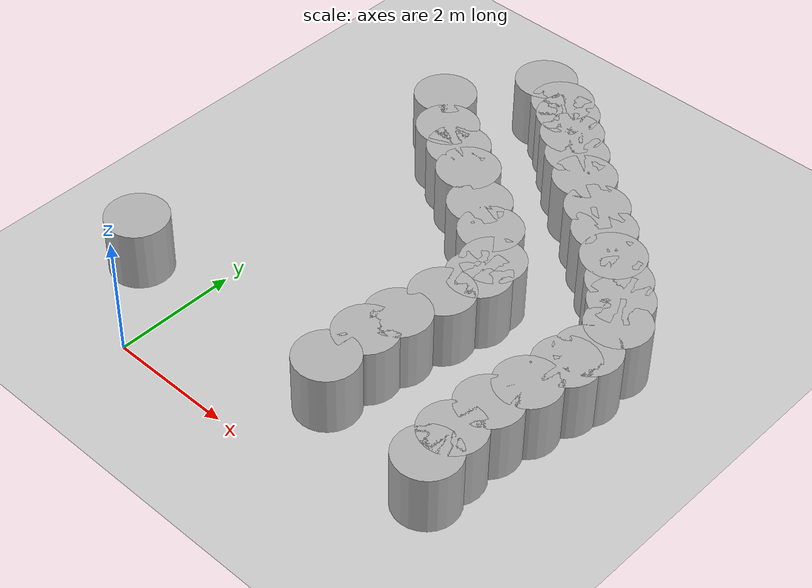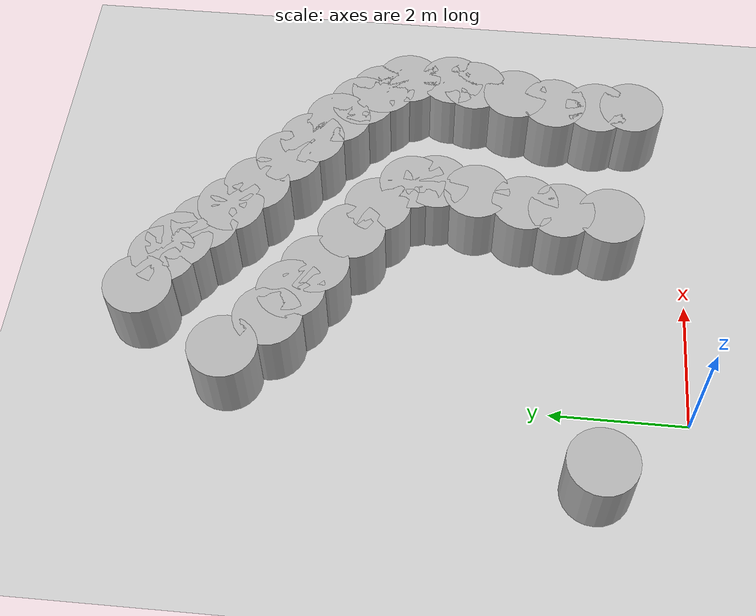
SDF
<sdf version="1.9">
 <world name="maze">
  <model name="ground_plane">
   <static>true</static>
   <link name="link">
    <collision name="collision">
     <geometry><plane><normal>0 0 1</normal><size>100 100</size></plane></geometry>
    </collision>
    <visual name="visual">
     <geometry><plane><normal>0 0 1</normal><size>100 100</size></plane></geometry>
     <material>
      <ambient>0.8 0.8 0.8 1</ambient>
      <diffuse>0.8 0.8 0.8 1</diffuse>
      <specular>0.8 0.8 0.8 1</specular>
     </material>
     <plugin name="__default__" filename="__default__"/>
    </visual>
    <inertial>
     <mass>1</mass>
     <inertia><ixx>1</ixx><ixy>0</ixy><ixz>0</ixz><iyy>1</iyy><iyz>0</iyz><izz>1</izz></inertia>
    </inertial>
   </link>
   <plugin name="__default__" filename="__default__"/>
  </model>
  <model name="cylinder_6">
   <pose>5.05596 0.90192 0.5 0 -0 0</pose>
   <link name="cylinder_link">
    <inertial>
     <inertia>
      <ixx>0.14580000000000001</ixx>
      <ixy>0</ixy>
      <ixz>0</ixz>
      <iyy>0.14580000000000001</iyy>
      <iyz>0</iyz>
      <izz>0.125</izz>
     </inertia>
     <mass>1</mass>
    </inertial>
    <collision name="cylinder_collision">
     <geometry><cylinder><radius>0.5</radius><length>1</length></cylinder></geometry>
    </collision>
    <visual name="cylinder_visual">
     <geometry><cylinder><radius>0.5</radius><length>1</length></cylinder></geometry>
     <material>
      <ambient>0.3 0.3 0.3 1</ambient>
      <diffuse>0.7 0.7 0.7 1</diffuse>
      <specular>1 1 1 1</specular>
     </material>
    </visual>
   </link>
   <static>false</static>
  </model>
  <model name="cylinder_7">
   <pose>5.00665 1.43891 0.5 0 -0 0</pose>
   <link name="cylinder_link">
    <inertial>
     <inertia>
      <ixx>0.14580000000000001</ixx>
      <ixy>0</ixy>
      <ixz>0</ixz>
      <iyy>0.14580000000000001</iyy>
      <iyz>0</iyz>
      <izz>0.125</izz>
     </inertia>
     <mass>1</mass>
    </inertial>
    <collision name="cylinder_collision">
     <geometry><cylinder><radius>0.5</radius><length>1</length></cylinder></geometry>
    </collision>
    <visual name="cylinder_visual">
     <geometry><cylinder><radius>0.5</radius><length>1</length></cylinder></geometry>
     <material>
      <ambient>0.3 0.3 0.3 1</ambient>
      <diffuse>0.7 0.7 0.7 1</diffuse>
      <specular>1 1 1 1</specular>
     </material>
    </visual>
   </link>
   <static>false</static>
  </model>
  <model name="cylinder_13">
   <pose>2.89583 1.22956 0.5 0 -0 0</pose>
   <link name="cylinder_link">
    <inertial>
     <inertia>
      <ixx>0.14580000000000001</ixx>
      <ixy>0</ixy>
      <ixz>0</ixz>
      <iyy>0.14580000000000001</iyy>
      <iyz>0</iyz>
      <izz>0.125</izz>
     </inertia>
     <mass>1</mass>
    </inertial>
    <collision name="cylinder_collision">
     <geometry><cylinder><radius>0.5</radius><length>1</length></cylinder></geometry>
    </collision>
    <visual name="cylinder_visual">
     <geometry><cylinder><radius>0.5</radius><length>1</length></cylinder></geometry>
     <material>
      <ambient>0.3 0.3 0.3 1</ambient>
      <diffuse>0.7 0.7 0.7 1</diffuse>
      <specular>1 1 1 1</specular>
     </material>
    </visual>
   </link>
   <static>false</static>
  </model>
  <model name="cylinder_14">
   <pose>2.93199 1.96354 0.5 0 -0 0</pose>
   <link name="cylinder_link">
    <inertial>
     <inertia>
      <ixx>0.14580000000000001</ixx>
      <ixy>0</ixy>
      <ixz>0</ixz>
      <iyy>0.14580000000000001</iyy>
      <iyz>0</iyz>
      <izz>0.125</izz>
     </inertia>
     <mass>1</mass>
    </inertial>
    <collision name="cylinder_collision">
     <geometry><cylinder><radius>0.5</radius><length>1</length></cylinder></geometry>
    </collision>
    <visual name="cylinder_visual">
     <geometry><cylinder><radius>0.5</radius><length>1</length></cylinder></geometry>
     <material>
      <ambient>0.3 0.3 0.3 1</ambient>
      <diffuse>0.7 0.7 0.7 1</diffuse>
      <specular>1 1 1 1</specular>
     </material>
    </visual>
   </link>
   <static>false</static>
  </model>
  <model name="cylinder_15">
   <pose>3.02494 2.50982 0.5 0 -0 0</pose>
   <link name="cylinder_link">
    <inertial>
     <inertia>
      <ixx>0.14580000000000001</ixx>
      <ixy>0</ixy>
      <ixz>0</ixz>
      <iyy>0.14580000000000001</iyy>
      <iyz>0</iyz>
      <izz>0.125</izz>
     </inertia>
     <mass>1</mass>
    </inertial>
    <collision name="cylinder_collision">
     <geometry><cylinder><radius>0.5</radius><length>1</length></cylinder></geometry>
    </collision>
    <visual name="cylinder_visual">
     <geometry><cylinder><radius>0.5</radius><length>1</length></cylinder></geometry>
     <material>
      <ambient>0.3 0.3 0.3 1</ambient>
      <diffuse>0.7 0.7 0.7 1</diffuse>
      <specular>1 1 1 1</specular>
     </material>
    </visual>
   </link>
   <static>false</static>
  </model>
  <model name="cylinder_16">
   <pose>5.04031 2.12177 0.5 0 -0 0</pose>
   <link name="cylinder_link">
    <inertial>
     <inertia>
      <ixx>0.14580000000000001</ixx>
      <ixy>0</ixy>
      <ixz>0</ixz>
      <iyy>0.14580000000000001</iyy>
      <iyz>0</iyz>
      <izz>0.125</izz>
     </inertia>
     <mass>1</mass>
    </inertial>
    <collision name="cylinder_collision">
     <geometry><cylinder><radius>0.5</radius><length>1</length></cylinder></geometry>
    </collision>
    <visual name="cylinder_visual">
     <geometry><cylinder><radius>0.5</radius><length>1</length></cylinder></geometry>
     <material>
      <ambient>0.3 0.3 0.3 1</ambient>
      <diffuse>0.7 0.7 0.7 1</diffuse>
      <specular>1 1 1 1</specular>
     </material>
    </visual>
   </link>
   <static>false</static>
  </model>
  <model name="cylinder_17">
   <pose>3.17881 3.24577 0.5 0 -0 0</pose>
   <link name="cylinder_link">
    <inertial>
     <inertia>
      <ixx>0.14580000000000001</ixx>
      <ixy>0</ixy>
      <ixz>0</ixz>
      <iyy>0.14580000000000001</iyy>
      <iyz>0</iyz>
      <izz>0.125</izz>
     </inertia>
     <mass>1</mass>
    </inertial>
    <collision name="cylinder_collision">
     <geometry><cylinder><radius>0.5</radius><length>1</length></cylinder></geometry>
    </collision>
    <visual name="cylinder_visual">
     <geometry><cylinder><radius>0.5</radius><length>1</length></cylinder></geometry>
     <material>
      <ambient>0.3 0.3 0.3 1</ambient>
      <diffuse>0.7 0.7 0.7 1</diffuse>
      <specular>1 1 1 1</specular>
     </material>
    </visual>
   </link>
   <static>false</static>
  </model>
  <model name="cylinder_18">
   <pose>3.30953 3.86336 0.5 0 -0 0</pose>
   <link name="cylinder_link">
    <inertial>
     <inertia>
      <ixx>0.14580000000000001</ixx>
      <ixy>0</ixy>
      <ixz>0</ixz>
      <iyy>0.14580000000000001</iyy>
      <iyz>0</iyz>
      <izz>0.125</izz>
     </inertia>
     <mass>1</mass>
    </inertial>
    <collision name="cylinder_collision">
     <geometry><cylinder><radius>0.5</radius><length>1</length></cylinder></geometry>
    </collision>
    <visual name="cylinder_visual">
     <geometry><cylinder><radius>0.5</radius><length>1</length></cylinder></geometry>
     <material>
      <ambient>0.3 0.3 0.3 1</ambient>
      <diffuse>0.7 0.7 0.7 1</diffuse>
      <specular>1 1 1 1</specular>
     </material>
    </visual>
   </link>
   <static>false</static>
  </model>
  <model name="cylinder_19">
   <pose>3.26516 4.22192 0.5 0 -0 0</pose>
   <link name="cylinder_link">
    <inertial>
     <inertia>
      <ixx>0.14580000000000001</ixx>
      <ixy>0</ixy>
      <ixz>0</ixz>
      <iyy>0.14580000000000001</iyy>
      <iyz>0</iyz>
      <izz>0.125</izz>
     </inertia>
     <mass>1</mass>
    </inertial>
    <collision name="cylinder_collision">
     <geometry><cylinder><radius>0.5</radius><length>1</length></cylinder></geometry>
    </collision>
    <visual name="cylinder_visual">
     <geometry><cylinder><radius>0.5</radius><length>1</length></cylinder></geometry>
     <material>
      <ambient>0.3 0.3 0.3 1</ambient>
      <diffuse>0.7 0.7 0.7 1</diffuse>
      <specular>1 1 1 1</specular>
     </material>
    </visual>
   </link>
   <static>false</static>
  </model>
  <model name="cylinder_20">
   <pose>2.79599 4.70402 0.5 0 -0 0</pose>
   <link name="cylinder_link">
    <inertial>
     <inertia>
      <ixx>0.14580000000000001</ixx>
      <ixy>0</ixy>
      <ixz>0</ixz>
      <iyy>0.14580000000000001</iyy>
      <iyz>0</iyz>
      <izz>0.125</izz>
     </inertia>
     <mass>1</mass>
    </inertial>
    <collision name="cylinder_collision">
     <geometry><cylinder><radius>0.5</radius><length>1</length></cylinder></geometry>
    </collision>
    <visual name="cylinder_visual">
     <geometry><cylinder><radius>0.5</radius><length>1</length></cylinder></geometry>
     <material>
      <ambient>0.3 0.3 0.3 1</ambient>
      <diffuse>0.7 0.7 0.7 1</diffuse>
      <specular>1 1 1 1</specular>
     </material>
    </visual>
   </link>
   <static>false</static>
  </model>
  <model name="cylinder_21">
   <pose>2.27964 5.04206 0.5 0 -0 0</pose>
   <link name="cylinder_link">
    <inertial>
     <inertia>
      <ixx>0.14580000000000001</ixx>
      <ixy>0</ixy>
      <ixz>0</ixz>
      <iyy>0.14580000000000001</iyy>
      <iyz>0</iyz>
      <izz>0.125</izz>
     </inertia>
     <mass>1</mass>
    </inertial>
    <collision name="cylinder_collision">
     <geometry><cylinder><radius>0.5</radius><length>1</length></cylinder></geometry>
    </collision>
    <visual name="cylinder_visual">
     <geometry><cylinder><radius>0.5</radius><length>1</length></cylinder></geometry>
     <material>
      <ambient>0.3 0.3 0.3 1</ambient>
      <diffuse>0.7 0.7 0.7 1</diffuse>
      <specular>1 1 1 1</specular>
     </material>
    </visual>
   </link>
   <static>false</static>
  </model>
  <model name="cylinder_22">
   <pose>1.64436 5.50225 0.5 0 -0 0</pose>
   <link name="cylinder_link">
    <inertial>
     <inertia>
      <ixx>0.14580000000000001</ixx>
      <ixy>0</ixy>
      <ixz>0</ixz>
      <iyy>0.14580000000000001</iyy>
      <iyz>0</iyz>
      <izz>0.125</izz>
     </inertia>
     <mass>1</mass>
    </inertial>
    <collision name="cylinder_collision">
     <geometry><cylinder><radius>0.5</radius><length>1</length></cylinder></geometry>
    </collision>
    <visual name="cylinder_visual">
     <geometry><cylinder><radius>0.5</radius><length>1</length></cylinder></geometry>
     <material>
      <ambient>0.3 0.3 0.3 1</ambient>
      <diffuse>0.7 0.7 0.7 1</diffuse>
      <specular>1 1 1 1</specular>
     </material>
    </visual>
   </link>
   <static>false</static>
  </model>
  <model name="cylinder_23">
   <pose>0.716786 6.0641 0.5 0 -0 0</pose>
   <link name="cylinder_link">
    <inertial>
     <inertia>
      <ixx>0.14580000000000001</ixx>
      <ixy>0</ixy>
      <ixz>0</ixz>
      <iyy>0.14580000000000001</iyy>
      <iyz>0</iyz>
      <izz>0.125</izz>
     </inertia>
     <mass>1</mass>
    </inertial>
    <collision name="cylinder_collision">
     <geometry><cylinder><radius>0.5</radius><length>1</length></cylinder></geometry>
    </collision>
    <visual name="cylinder_visual">
     <geometry><cylinder><radius>0.5</radius><length>1</length></cylinder></geometry>
     <material>
      <ambient>0.3 0.3 0.3 1</ambient>
      <diffuse>0.7 0.7 0.7 1</diffuse>
      <specular>1 1 1 1</specular>
     </material>
    </visual>
   </link>
   <static>false</static>
  </model>
  <model name="cylinder_24">
   <pose>1.1856 5.79695 0.5 0 -0 0</pose>
   <link name="cylinder_link">
    <inertial>
     <inertia>
      <ixx>0.14580000000000001</ixx>
      <ixy>0</ixy>
      <ixz>0</ixz>
      <iyy>0.14580000000000001</iyy>
      <iyz>0</iyz>
      <izz>0.125</izz>
     </inertia>
     <mass>1</mass>
    </inertial>
    <collision name="cylinder_collision">
     <geometry><cylinder><radius>0.5</radius><length>1</length></cylinder></geometry>
    </collision>
    <visual name="cylinder_visual">
     <geometry><cylinder><radius>0.5</radius><length>1</length></cylinder></geometry>
     <material>
      <ambient>0.3 0.3 0.3 1</ambient>
      <diffuse>0.7 0.7 0.7 1</diffuse>
      <specular>1 1 1 1</specular>
     </material>
    </visual>
   </link>
   <static>false</static>
  </model>
  <model name="cylinder_25">
   <pose>0.160367 6.62092 0.5 0 -0 0</pose>
   <link name="cylinder_link">
    <inertial>
     <inertia>
      <ixx>0.14580000000000001</ixx>
      <ixy>0</ixy>
      <ixz>0</ixz>
      <iyy>0.14580000000000001</iyy>
      <iyz>0</iyz>
      <izz>0.125</izz>
     </inertia>
     <mass>1</mass>
    </inertial>
    <collision name="cylinder_collision">
     <geometry><cylinder><radius>0.5</radius><length>1</length></cylinder></geometry>
    </collision>
    <visual name="cylinder_visual">
     <geometry><cylinder><radius>0.5</radius><length>1</length></cylinder></geometry>
     <material>
      <ambient>0.3 0.3 0.3 1</ambient>
      <diffuse>0.7 0.7 0.7 1</diffuse>
      <specular>1 1 1 1</specular>
     </material>
    </visual>
   </link>
   <static>false</static>
  </model>
  <model name="cylinder_26">
   <pose>5.17862 2.742 0.5 0 -0 0</pose>
   <link name="cylinder_link">
    <inertial>
     <inertia>
      <ixx>0.14580000000000001</ixx>
      <ixy>0</ixy>
      <ixz>0</ixz>
      <iyy>0.14580000000000001</iyy>
      <iyz>0</iyz>
      <izz>0.125</izz>
     </inertia>
     <mass>1</mass>
    </inertial>
    <collision name="cylinder_collision">
     <geometry><cylinder><radius>0.5</radius><length>1</length></cylinder></geometry>
    </collision>
    <visual name="cylinder_visual">
     <geometry><cylinder><radius>0.5</radius><length>1</length></cylinder></geometry>
     <material>
      <ambient>0.3 0.3 0.3 1</ambient>
      <diffuse>0.7 0.7 0.7 1</diffuse>
      <specular>1 1 1 1</specular>
     </material>
    </visual>
   </link>
   <static>false</static>
  </model>
  <model name="cylinder_27">
   <pose>5.30273 3.39871 0.5 0 -0 0</pose>
   <link name="cylinder_link">
    <inertial>
     <inertia>
      <ixx>0.14580000000000001</ixx>
      <ixy>0</ixy>
      <ixz>0</ixz>
      <iyy>0.14580000000000001</iyy>
      <iyz>0</iyz>
      <izz>0.125</izz>
     </inertia>
     <mass>1</mass>
    </inertial>
    <collision name="cylinder_collision">
     <geometry><cylinder><radius>0.5</radius><length>1</length></cylinder></geometry>
    </collision>
    <visual name="cylinder_visual">
     <geometry><cylinder><radius>0.5</radius><length>1</length></cylinder></geometry>
     <material>
      <ambient>0.3 0.3 0.3 1</ambient>
      <diffuse>0.7 0.7 0.7 1</diffuse>
      <specular>1 1 1 1</specular>
     </material>
    </visual>
   </link>
   <static>false</static>
  </model>
  <model name="cylinder_28">
   <pose>5.38687 3.75792 0.5 0 -0 0</pose>
   <link name="cylinder_link">
    <inertial>
     <inertia>
      <ixx>0.14580000000000001</ixx>
      <ixy>0</ixy>
      <ixz>0</ixz>
      <iyy>0.14580000000000001</iyy>
      <iyz>0</iyz>
      <izz>0.125</izz>
     </inertia>
     <mass>1</mass>
    </inertial>
    <collision name="cylinder_collision">
     <geometry><cylinder><radius>0.5</radius><length>1</length></cylinder></geometry>
    </collision>
    <visual name="cylinder_visual">
     <geometry><cylinder><radius>0.5</radius><length>1</length></cylinder></geometry>
     <material>
      <ambient>0.3 0.3 0.3 1</ambient>
      <diffuse>0.7 0.7 0.7 1</diffuse>
      <specular>1 1 1 1</specular>
     </material>
    </visual>
   </link>
   <static>false</static>
  </model>
  <model name="cylinder_29">
   <pose>5.35531 4.44847 0.5 0 -0 0</pose>
   <link name="cylinder_link">
    <inertial>
     <inertia>
      <ixx>0.14580000000000001</ixx>
      <ixy>0</ixy>
      <ixz>0</ixz>
      <iyy>0.14580000000000001</iyy>
      <iyz>0</iyz>
      <izz>0.125</izz>
     </inertia>
     <mass>1</mass>
    </inertial>
    <collision name="cylinder_collision">
     <geometry><cylinder><radius>0.5</radius><length>1</length></cylinder></geometry>
    </collision>
    <visual name="cylinder_visual">
     <geometry><cylinder><radius>0.5</radius><length>1</length></cylinder></geometry>
     <material>
      <ambient>0.3 0.3 0.3 1</ambient>
      <diffuse>0.7 0.7 0.7 1</diffuse>
      <specular>1 1 1 1</specular>
     </material>
    </visual>
   </link>
   <static>false</static>
  </model>
  <model name="cylinder_30">
   <pose>5.09301 4.84558 0.5 0 -0 0</pose>
   <link name="cylinder_link">
    <inertial>
     <inertia>
      <ixx>0.14580000000000001</ixx>
      <ixy>0</ixy>
      <ixz>0</ixz>
      <iyy>0.14580000000000001</iyy>
      <iyz>0</iyz>
      <izz>0.125</izz>
     </inertia>
     <mass>1</mass>
    </inertial>
    <collision name="cylinder_collision">
     <geometry><cylinder><radius>0.5</radius><length>1</length></cylinder></geometry>
    </collision>
    <visual name="cylinder_visual">
     <geometry><cylinder><radius>0.5</radius><length>1</length></cylinder></geometry>
     <material>
      <ambient>0.3 0.3 0.3 1</ambient>
      <diffuse>0.7 0.7 0.7 1</diffuse>
      <specular>1 1 1 1</specular>
     </material>
    </visual>
   </link>
   <static>false</static>
  </model>
  <model name="cylinder_31">
   <pose>4.81726 5.14263 0.5 0 -0 0</pose>
   <link name="cylinder_link">
    <inertial>
     <inertia>
      <ixx>0.14580000000000001</ixx>
      <ixy>0</ixy>
      <ixz>0</ixz>
      <iyy>0.14580000000000001</iyy>
      <iyz>0</iyz>
      <izz>0.125</izz>
     </inertia>
     <mass>1</mass>
    </inertial>
    <collision name="cylinder_collision">
     <geometry><cylinder><radius>0.5</radius><length>1</length></cylinder></geometry>
    </collision>
    <visual name="cylinder_visual">
     <geometry><cylinder><radius>0.5</radius><length>1</length></cylinder></geometry>
     <material>
      <ambient>0.3 0.3 0.3 1</ambient>
      <diffuse>0.7 0.7 0.7 1</diffuse>
      <specular>1 1 1 1</specular>
     </material>
    </visual>
   </link>
   <static>false</static>
  </model>
  <model name="cylinder_32">
   <pose>4.44048 5.48779 0.5 0 -0 0</pose>
   <link name="cylinder_link">
    <inertial>
     <inertia>
      <ixx>0.14580000000000001</ixx>
      <ixy>0</ixy>
      <ixz>0</ixz>
      <iyy>0.14580000000000001</iyy>
      <iyz>0</iyz>
      <izz>0.125</izz>
     </inertia>
     <mass>1</mass>
    </inertial>
    <collision name="cylinder_collision">
     <geometry><cylinder><radius>0.5</radius><length>1</length></cylinder></geometry>
    </collision>
    <visual name="cylinder_visual">
     <geometry><cylinder><radius>0.5</radius><length>1</length></cylinder></geometry>
     <material>
      <ambient>0.3 0.3 0.3 1</ambient>
      <diffuse>0.7 0.7 0.7 1</diffuse>
      <specular>1 1 1 1</specular>
     </material>
    </visual>
   </link>
   <static>false</static>
  </model>
  <model name="cylinder_33">
   <pose>3.98893 5.84732 0.5 0 -0 0</pose>
   <link name="cylinder_link">
    <inertial>
     <inertia>
      <ixx>0.14580000000000001</ixx>
      <ixy>0</ixy>
      <ixz>0</ixz>
      <iyy>0.14580000000000001</iyy>
      <iyz>0</iyz>
      <izz>0.125</izz>
     </inertia>
     <mass>1</mass>
    </inertial>
    <collision name="cylinder_collision">
     <geometry><cylinder><radius>0.5</radius><length>1</length></cylinder></geometry>
    </collision>
    <visual name="cylinder_visual">
     <geometry><cylinder><radius>0.5</radius><length>1</length></cylinder></geometry>
     <material>
      <ambient>0.3 0.3 0.3 1</ambient>
      <diffuse>0.7 0.7 0.7 1</diffuse>
      <specular>1 1 1 1</specular>
     </material>
    </visual>
   </link>
   <static>false</static>
  </model>
  <model name="cylinder_34">
   <pose>3.59604 6.16292 0.5 0 -0 0</pose>
   <link name="cylinder_link">
    <inertial>
     <inertia>
      <ixx>0.14580000000000001</ixx>
      <ixy>0</ixy>
      <ixz>0</ixz>
      <iyy>0.14580000000000001</iyy>
      <iyz>0</iyz>
      <izz>0.125</izz>
     </inertia>
     <mass>1</mass>
    </inertial>
    <collision name="cylinder_collision">
     <geometry><cylinder><radius>0.5</radius><length>1</length></cylinder></geometry>
    </collision>
    <visual name="cylinder_visual">
     <geometry><cylinder><radius>0.5</radius><length>1</length></cylinder></geometry>
     <material>
      <ambient>0.3 0.3 0.3 1</ambient>
      <diffuse>0.7 0.7 0.7 1</diffuse>
      <specular>1 1 1 1</specular>
     </material>
    </visual>
   </link>
   <static>false</static>
  </model>
  <model name="cylinder_35">
   <pose>3.03068 6.56541 0.5 0 -0 0</pose>
   <link name="cylinder_link">
    <inertial>
     <inertia>
      <ixx>0.14580000000000001</ixx>
      <ixy>0</ixy>
      <ixz>0</ixz>
      <iyy>0.14580000000000001</iyy>
      <iyz>0</iyz>
      <izz>0.125</izz>
     </inertia>
     <mass>1</mass>
    </inertial>
    <collision name="cylinder_collision">
     <geometry><cylinder><radius>0.5</radius><length>1</length></cylinder></geometry>
    </collision>
    <visual name="cylinder_visual">
     <geometry><cylinder><radius>0.5</radius><length>1</length></cylinder></geometry>
     <material>
      <ambient>0.3 0.3 0.3 1</ambient>
      <diffuse>0.7 0.7 0.7 1</diffuse>
      <specular>1 1 1 1</specular>
     </material>
    </visual>
   </link>
   <static>false</static>
  </model>
  <model name="cylinder_36">
   <pose>2.61083 6.8992 0.5 0 -0 0</pose>
   <link name="cylinder_link">
    <inertial>
     <inertia>
      <ixx>0.14580000000000001</ixx>
      <ixy>0</ixy>
      <ixz>0</ixz>
      <iyy>0.14580000000000001</iyy>
      <iyz>0</iyz>
      <izz>0.125</izz>
     </inertia>
     <mass>1</mass>
    </inertial>
    <collision name="cylinder_collision">
     <geometry><cylinder><radius>0.5</radius><length>1</length></cylinder></geometry>
    </collision>
    <visual name="cylinder_visual">
     <geometry><cylinder><radius>0.5</radius><length>1</length></cylinder></geometry>
     <material>
      <ambient>0.3 0.3 0.3 1</ambient>
      <diffuse>0.7 0.7 0.7 1</diffuse>
      <specular>1 1 1 1</specular>
     </material>
    </visual>
   </link>
   <static>false</static>
  </model>
  <model name="cylinder_37">
   <pose>2.23714 7.2314 0.5 0 -0 0</pose>
   <link name="cylinder_link">
    <inertial>
     <inertia>
      <ixx>0.14580000000000001</ixx>
      <ixy>0</ixy>
      <ixz>0</ixz>
      <iyy>0.14580000000000001</iyy>
      <iyz>0</iyz>
      <izz>0.125</izz>
     </inertia>
     <mass>1</mass>
    </inertial>
    <collision name="cylinder_collision">
     <geometry><cylinder><radius>0.5</radius><length>1</length></cylinder></geometry>
    </collision>
    <visual name="cylinder_visual">
     <geometry><cylinder><radius>0.5</radius><length>1</length></cylinder></geometry>
     <material>
      <ambient>0.3 0.3 0.3 1</ambient>
      <diffuse>0.7 0.7 0.7 1</diffuse>
      <specular>1 1 1 1</specular>
     </material>
    </visual>
   </link>
   <static>false</static>
  </model>
  <model name="cylinder_38">
   <pose>1.89288 7.54863 0.5 0 -0 0</pose>
   <link name="cylinder_link">
    <inertial>
     <inertia>
      <ixx>0.14580000000000001</ixx>
      <ixy>0</ixy>
      <ixz>0</ixz>
      <iyy>0.14580000000000001</iyy>
      <iyz>0</iyz>
      <izz>0.125</izz>
     </inertia>
     <mass>1</mass>
    </inertial>
    <collision name="cylinder_collision">
     <geometry><cylinder><radius>0.5</radius><length>1</length></cylinder></geometry>
    </collision>
    <visual name="cylinder_visual">
     <geometry><cylinder><radius>0.5</radius><length>1</length></cylinder></geometry>
     <material>
      <ambient>0.3 0.3 0.3 1</ambient>
      <diffuse>0.7 0.7 0.7 1</diffuse>
      <specular>1 1 1 1</specular>
     </material>
    </visual>
   </link>
   <static>false</static>
  </model>
  <model name="cylinder_39">
   <pose>1.62099 7.74628 0.5 0 -0 0</pose>
   <link name="cylinder_link">
    <inertial>
     <inertia>
      <ixx>0.14580000000000001</ixx>
      <ixy>0</ixy>
      <ixz>0</ixz>
      <iyy>0.14580000000000001</iyy>
      <iyz>0</iyz>
      <izz>0.125</izz>
     </inertia>
     <mass>1</mass>
    </inertial>
    <collision name="cylinder_collision">
     <geometry><cylinder><radius>0.5</radius><length>1</length></cylinder></geometry>
    </collision>
    <visual name="cylinder_visual">
     <geometry><cylinder><radius>0.5</radius><length>1</length></cylinder></geometry>
     <material>
      <ambient>0.3 0.3 0.3 1</ambient>
      <diffuse>0.7 0.7 0.7 1</diffuse>
      <specular>1 1 1 1</specular>
     </material>
    </visual>
   </link>
   <static>false</static>
  </model>
  <model name="cylinder_40">
   <pose>1.07105 8.00419 0.5 0 -0 0</pose>
   <link name="cylinder_link">
    <inertial>
     <inertia>
      <ixx>0.14580000000000001</ixx>
      <ixy>0</ixy>
      <ixz>0</ixz>
      <iyy>0.14580000000000001</iyy>
      <iyz>0</iyz>
      <izz>0.125</izz>
     </inertia>
     <mass>1</mass>
    </inertial>
    <collision name="cylinder_collision">
     <geometry><cylinder><radius>0.5</radius><length>1</length></cylinder></geometry>
    </collision>
    <visual name="cylinder_visual">
     <geometry><cylinder><radius>0.5</radius><length>1</length></cylinder></geometry>
     <material>
      <ambient>0.3 0.3 0.3 1</ambient>
      <diffuse>0.7 0.7 0.7 1</diffuse>
      <specular>1 1 1 1</specular>
     </material>
    </visual>
   </link>
   <static>false</static>
  </model>
  <model name="cylinder_41">
   <pose>-1.12525 1.33149 0.5 0 -0 0</pose>
   <link name="cylinder_link">
    <inertial>
     <inertia>
      <ixx>0.14580000000000001</ixx>
      <ixy>0</ixy>
      <ixz>0</ixz>
      <iyy>0.14580000000000001</iyy>
      <iyz>0</iyz>
      <izz>0.125</izz>
     </inertia>
     <mass>1</mass>
    </inertial>
    <collision name="cylinder_collision">
     <geometry><cylinder><radius>0.5</radius><length>1</length></cylinder></geometry>
    </collision>
    <visual name="cylinder_visual">
     <geometry><cylinder><radius>0.5</radius><length>1</length></cylinder></geometry>
     <material>
      <ambient>0.3 0.3 0.3 1</ambient>
      <diffuse>0.7 0.7 0.7 1</diffuse>
      <specular>1 1 1 1</specular>
     </material>
    </visual>
   </link>
   <static>false</static>
  </model>
 </world>
</sdf>
